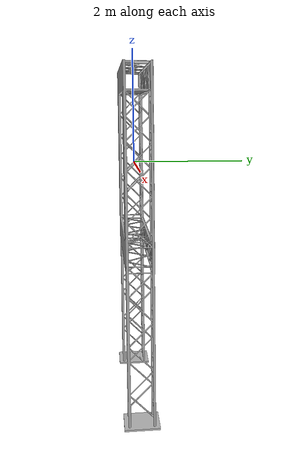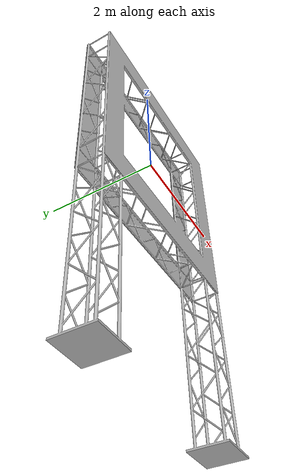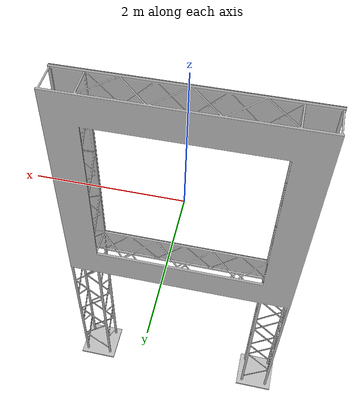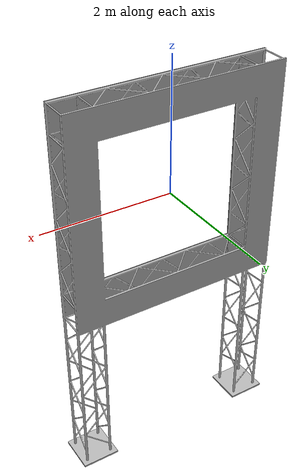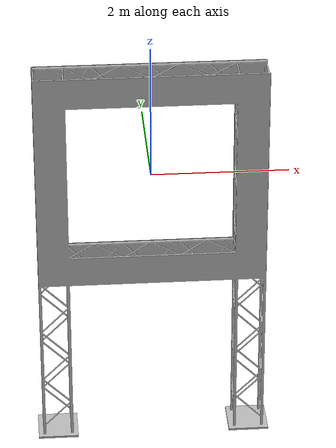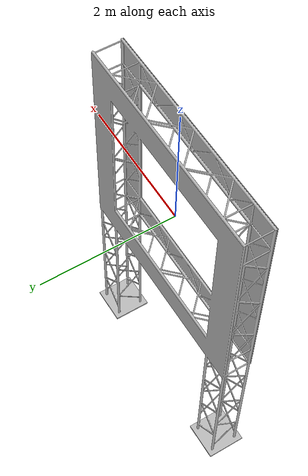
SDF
<?xml version="1.0"?>
<sdf version="1.5">
    <model name="thu_dme_gate">
        <pose>0 0 0 0 0 0</pose>
        <static>true</static>
        <link name="link">
            <collision name="collision">
                <geometry>
                    <mesh>
                      	<scale>1 1 1</scale>
                    	<uri>model://thu_dme_gate/model.stl</uri>
                    </mesh>
                </geometry>
                <max_contacts>10</max_contacts>
                <surface>
                    <contact>
                        <ode/>
                    </contact>
                    <bounce/>
                    <friction>
                        <torsional>
                            <ode/>
                        </torsional>
                        <ode/>
                    </friction>
                </surface>
            </collision>
            <visual name="visual">
                <geometry>
                    <mesh>
                    	<scale>1 1 1</scale>
                   	<uri>model://thu_dme_gate/model.stl</uri>
                    </mesh>
                </geometry>
            </visual>
            <self_collide>0</self_collide>
            <enable_wind>0</enable_wind>
            <kinematic>0</kinematic>
        </link>
    </model>
</sdf>
